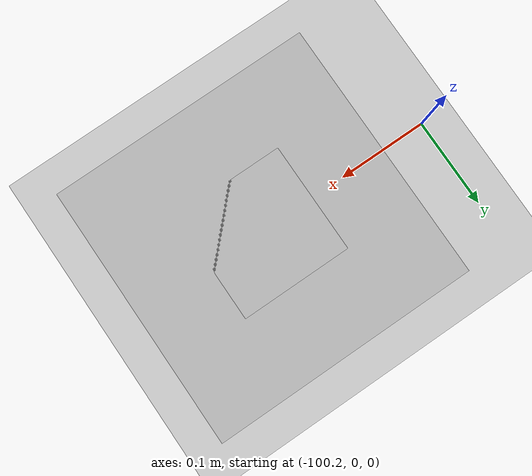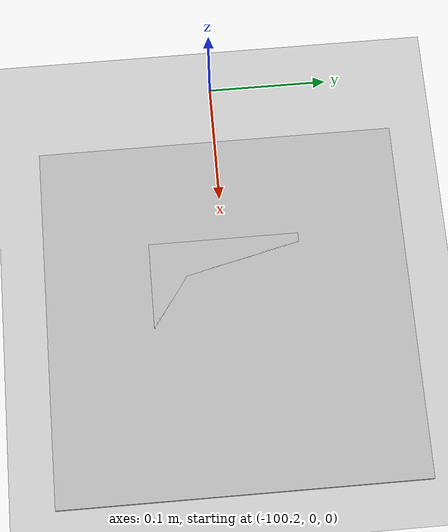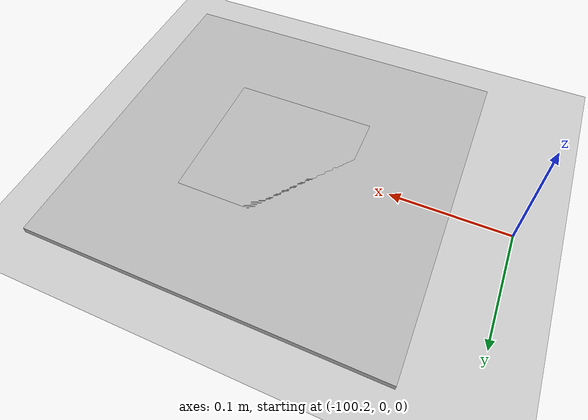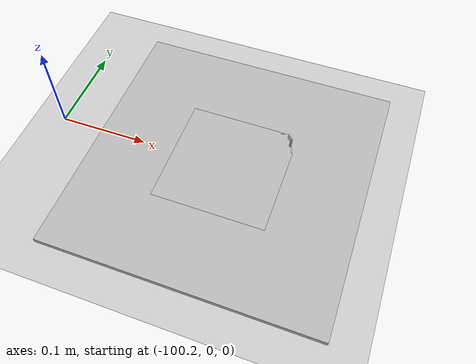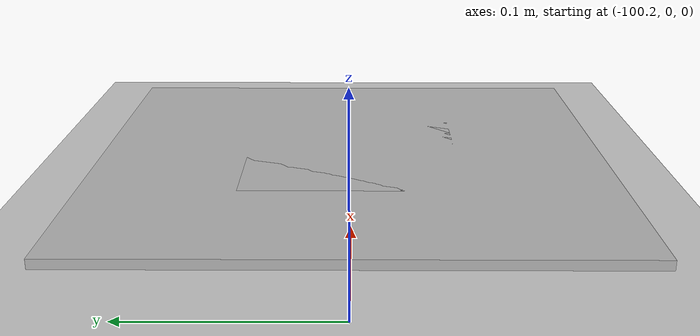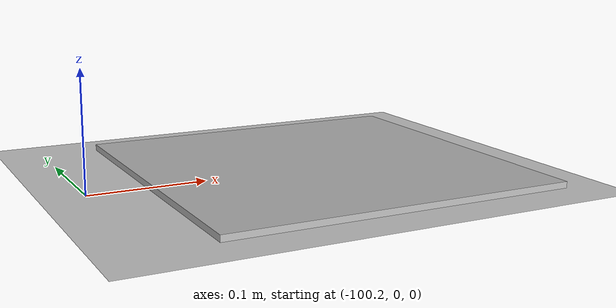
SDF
<sdf version="1.6">
 <world name="default">
  <light name="sun" type="directional">
   <pose>0 0 10 0 -0 0</pose>
   <diffuse>0.8 0.8 0.8 1</diffuse>
   <specular>0.2 0.2 0.2 1</specular>
   <attenuation>
    <range>1000</range>
    <constant>0.9</constant>
    <linear>0.01</linear>
    <quadratic>0.001</quadratic>
   </attenuation>
   <direction>-0.5 0.1 -0.9</direction>
  </light>
  <model name="ground_plane">
   <static>1</static>
   <link name="link">
    <collision name="collision">
     <geometry><plane><normal>0 0 1</normal><size>100 100</size></plane></geometry>
     <surface>
      <contact><collide_bitmask>65535</collide_bitmask></contact>
      <friction><ode><mu>100</mu><mu2>50</mu2></ode></friction>
     </surface>
    </collision>
    <visual name="visual">
     <cast_shadows>0</cast_shadows>
     <geometry><plane><normal>0 0 1</normal><size>100 100</size></plane></geometry>
     <material>
      <script><uri>file://media/materials/scripts/gazebo.material</uri><name>Gazebo/Grey</name></script>
     </material>
    </visual>
   </link>
  </model>
  <physics name="default_physics" default="0" type="ode">
   <ode>
    <solver>
     <type>quick</type>
     <iters>10</iters>
     <sor>1.3</sor>
     <use_dynamic_moi_rescaling>0</use_dynamic_moi_rescaling>
    </solver>
    <constraints>
     <cfm>0</cfm>
     <erp>0.2</erp>
     <contact_max_correcting_vel>100</contact_max_correcting_vel>
     <contact_surface_layer>0.001</contact_surface_layer>
    </constraints>
   </ode>
   <max_step_size>0.004</max_step_size>
   <real_time_factor>1</real_time_factor>
   <real_time_update_rate>250</real_time_update_rate>
  </physics>
  <gravity>0 0 -9.8066</gravity>
  <magnetic_field>6e-06 2.3e-05 -4.2e-05</magnetic_field>
  <atmosphere type="adiabatic"/>
  <scene><ambient>0.4 0.4 0.4 1</ambient><background>0.7 0.7 0.7 1</background><shadows>1</shadows></scene>
  <spherical_coordinates>
   <surface_model>EARTH_WGS84</surface_model>
   <latitude_deg>0</latitude_deg>
   <longitude_deg>0</longitude_deg>
   <elevation>0</elevation>
   <heading_deg>0</heading_deg>
  </spherical_coordinates>
  <model name="Apriltag36_11_00013">
   <link name="apriltag_link1">
    <pose>-100 0 0 0 -0 0</pose>
    <visual name="aprilTag">
     <geometry><box><size>0.3 0.3 0.01</size></box></geometry>
     <material>
      <script>
       <uri>model://Apriltag36_11_00013/materials/scripts</uri>
       <uri>model://Apriltag36_11_00013/materials/textures</uri>
       <name>Apriltag36_11_00013</name>
      </script>
     </material>
    </visual>
   </link>
   <static>1</static>
  </model>
  <model name="Apriltag36_11_00014">
   <link name="apriltag_link2">
    <pose>-100 0 0 0 -0 0</pose>
    <visual name="aprilTag">
     <geometry><box><size>0.125 0.125 0.01</size></box></geometry>
     <material>
      <script>
       <uri>model://Apriltag36_11_00014/materials/scripts</uri>
       <uri>model://Apriltag36_11_00014/materials/textures</uri>
       <name>Apriltag36_11_00014</name>
      </script>
     </material>
    </visual>
   </link>
   <static>1</static>
  </model>
  <plugin name="wind_plugin" filename="libgazebo_wind_plugin.so">
   <frameId>world</frameId>
   <windVelocityMean>1.0</windVelocityMean>
   <windVelocityMax>5.0</windVelocityMax>
   <windVelocityVariance>0</windVelocityVariance>
   <windDirectionMean>0 1 0</windDirectionMean>
   <windDirectionVariance>0</windDirectionVariance>
   <windGustStart>0</windGustStart>
   <windGustDuration>0</windGustDuration>
   <windGustVelocityMean>0</windGustVelocityMean>
   <windGustVelocityMax>20.0</windGustVelocityMax>
   <windGustVelocityVariance>0</windGustVelocityVariance>
   <windGustDirectionMean>1 0 0</windGustDirectionMean>
   <windGustDirectionVariance>0</windGustDirectionVariance>
   <windPubTopic>world_wind</windPubTopic>
  </plugin>
 </world>
</sdf>
